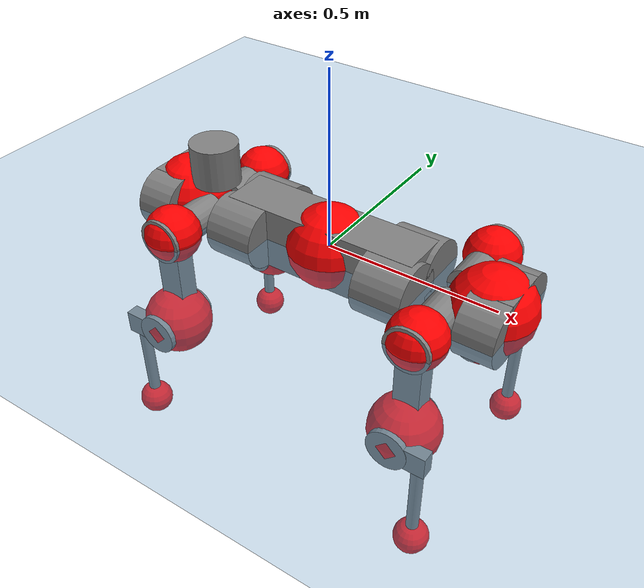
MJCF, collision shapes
<mujoco model="anymal_c">
  <compiler angle="radian" assetdir="assets" balanceinertia="true" inertiafromgeom="false"/>

  <option timestep="0.005" density="1.2" viscosity="2e-05"/>

  <size nkey="1"/>

  <visual>
    <quality shadowsize="8192"/>
    <map shadowclip="0.5"/>
  </visual>

  <default>
    <default class="/">
      <material specular="0" shininess="0.25"/>
      <geom contype="0" conaffinity="0" group="1" solref="-1000 -80"/>
      <site size="0.01 0.005 0.005" group="5"/>
      <general forcelimited="true" forcerange="-80 80" biastype="affine" gainprm="80" biasprm="0 -80 -2"/>
      <default class="anymal_c">
        <joint armature="0.01" damping="0.01" frictionloss="0.1"/>
        <default class="visual">
          <geom type="mesh" group="2"/>
          <default class="visual_zflip"/>
        </default>
        <default class="collision">
          <geom type="cylinder" group="3"/>
          <default class="foot">
            <geom size="0.03 0 0" type="sphere" condim="6" priority="1" friction="0.8 0.02 0.01" solimp="0.015 1 0.03"/>
          </default>
        </default>
      </default>
      <default class="reward_collision_sphere">
        <geom group="5" rgba="1 0 0 1"/>
      </default>
    </default>
  </default>

  <asset>
    <texture type="skybox" colorspace="auto" name="//unnamed_texture_0" builtin="gradient" rgb1="0.95 0.95 0.95" rgb2="0.95 0.95 0.95" width="100" height="600"/>
    <texture type="2d" colorspace="auto" name="texplane" builtin="checker" rgb1="0.345 0.575 0.748" rgb2="0.345 0.575 0.748" markrgb="1 1 1" width="512" height="512"/>
    <texture type="2d" colorspace="linear" name="base" file="base.png"/>
    <texture type="2d" colorspace="linear" name="top_shell" file="top_shell.png"/>
    <texture type="2d" colorspace="linear" name="bottom_shell" file="bottom_shell.png"/>
    <texture type="2d" colorspace="linear" name="remote" file="remote.png"/>
    <texture type="2d" colorspace="linear" name="hatch" file="hatch.png"/>
    <texture type="2d" colorspace="linear" name="handle" file="handle.png"/>
    <texture type="2d" colorspace="linear" name="face" file="face.png"/>
    <texture type="2d" colorspace="linear" name="battery" file="battery.png"/>
    <texture type="2d" colorspace="linear" name="lidar_cage" file="lidar_cage.png"/>
    <texture type="2d" colorspace="linear" name="depth_camera" file="depth_camera.png"/>
    <texture type="2d" colorspace="linear" name="wide_angle_camera" file="wide_angle_camera.png"/>
    <texture type="2d" colorspace="linear" name="lidar" file="lidar.png"/>
    <texture type="2d" colorspace="linear" name="drive" file="drive.png"/>
    <texture type="2d" colorspace="linear" name="hip_l" file="hip_l.png"/>
    <texture type="2d" colorspace="linear" name="shank_l" file="shank_l.png"/>
    <texture type="2d" colorspace="linear" name="foot" file="foot.png"/>
    <texture type="2d" colorspace="linear" name="thigh" file="thigh.png"/>
    <texture type="2d" colorspace="linear" name="shank_r" file="shank_r.png"/>
    <texture type="2d" colorspace="linear" name="hip_r" file="hip_r.png"/>
    <material name="MatPlane" class="/" texture="texplane" texuniform="true" texrepeat="2 2" specular="0.9" shininess="0.5"/>
    <material name="black_plastic" class="/" rgba="0.007 0.007 0.007 1"/>
    <material name="green" class="/" rgba="0.052 0.178 0.033 1"/>
    <material name="red" class="/" rgba="0.178 0.006 0.005 1"/>
    <material name="yellow" class="/" rgba="0.178 0.119 0.006 1"/>
    <material name="lwl" class="/" rgba="0.8 0.8 0.8 1"/>
    <material name="base" class="/" texture="base"/>
    <material name="top_shell" class="/" texture="top_shell"/>
    <material name="bottom_shell" class="/" texture="bottom_shell"/>
    <material name="hip_l" class="/" texture="hip_l"/>
    <material name="thigh" class="/" texture="thigh"/>
    <material name="shank_l" class="/" texture="shank_l"/>
    <material name="foot" class="/" texture="foot"/>
    <material name="hip_r" class="/" texture="hip_r"/>
    <material name="shank" class="/" texture="shank_r"/>
    <material name="hatch" class="/" texture="hatch"/>
    <material name="remote" class="/" texture="remote"/>
    <material name="handle" class="/" texture="handle"/>
    <material name="face" class="/" texture="face"/>
    <material name="depth_camera" class="/" texture="depth_camera"/>
    <material name="wide_angle_camera" class="/" texture="wide_angle_camera"/>
    <material name="battery" class="/" texture="battery"/>
    <material name="lidar_cage" class="/" texture="lidar_cage"/>
    <material name="lidar" class="/" texture="lidar"/>
    <material name="drive" class="/" texture="drive"/>
    <mesh name="base_0" class="/" file="base_0.obj"/>
    <mesh name="base_1" class="/" file="base_1.obj"/>
    <mesh name="base_2" class="/" file="base_2.obj"/>
    <mesh name="base_3" class="/" file="base_3.obj"/>
    <mesh name="base_4" class="/" file="base_4.obj"/>
    <mesh name="base_5" class="/" file="base_5.obj"/>
    <mesh name="top_shell" class="/" file="top_shell.obj"/>
    <mesh name="bottom_shell" class="/" file="bottom_shell.obj"/>
    <mesh name="remote" class="/" file="remote.obj"/>
    <mesh name="handle" class="/" file="handle.obj"/>
    <mesh name="face" class="/" file="face.obj"/>
    <mesh name="wide_angle_camera" class="/" file="wide_angle_camera.obj"/>
    <mesh name="depth_camera" class="/" file="depth_camera.obj"/>
    <mesh name="battery" class="/" file="battery.obj"/>
    <mesh name="lidar_cage" class="/" file="lidar_cage.obj"/>
    <mesh name="lidar" class="/" file="lidar.obj"/>
    <mesh name="drive" class="/" file="drive.obj"/>
    <mesh name="hip_l" class="/" file="hip_l.obj"/>
    <mesh name="thigh" class="/" file="thigh.obj"/>
    <mesh name="shank_l" class="/" file="shank_l.obj"/>
    <mesh name="foot" class="/" file="foot.obj"/>
    <mesh name="hip_r" class="/" file="hip_r.obj"/>
    <mesh name="hatch" class="/" file="hatch.obj"/>
    <mesh name="shank_r" class="/" file="shank_r.obj"/>
  </asset>

  <worldbody>
    <geom name="floor" class="/" size="100 100 0.125" type="plane" group="0" material="MatPlane"/>
    <light name="toplight_shadow" class="/" pos="0 0 5" dir="0.0990148 0.0990148 -0.990148" type="directional" ambient="0.04 0.04 0.04" diffuse="0.55 0.55 0.55" specular="0.12 0.12 0.12"/>
    <light name="toplight_fill" class="/" pos="0 0 5" dir="0.0990148 0.0990148 -0.990148" type="directional" castshadow="false" ambient="0.04 0.04 0.04" diffuse="0.3 0.3 0.3" specular="0.08 0.08 0.08"/>
    <body name="trunk" childclass="anymal_c" pos="0.0014398 0.000112949 0.000941203" quat="1 0.000136817 0.000431092 8.01576e-05">
      <inertial pos="0.00122632 -0.000780023 0.0490353" quat="0.498795 0.500285 0.501902 0.499012" mass="18.4674" diaginertia="0.89469 0.409116 0.211725"/>
      <joint name="//unnamed_joint_0" type="free" armature="0" damping="0" frictionloss="0"/>
      <geom name="//unnamed_geom_1" class="visual" material="green" mesh="base_0"/>
      <geom name="//unnamed_geom_2" class="visual" material="yellow" mesh="base_1"/>
      <geom name="//unnamed_geom_3" class="visual" material="red" mesh="base_2"/>
      <geom name="//unnamed_geom_4" class="visual" material="black_plastic" mesh="base_3"/>
      <geom name="//unnamed_geom_5" class="visual" material="lwl" mesh="base_4"/>
      <geom name="//unnamed_geom_6" class="visual" material="base" mesh="base_5"/>
      <geom name="trunk_1" class="collision" size="0.288324 0.0695955 0.0894799" type="box"/>
      <geom name="trunk_2" class="collision" size="0.0894799 0.0720811" pos="0.232409 0.0642951 0" quat="0.707107 0 0.707107 0"/>
      <geom name="trunk_3" class="collision" size="0.0894799 0.0720811" pos="-0.232409 0.0642951 0" quat="0.707107 0 0.707107 0"/>
      <geom name="trunk_4" class="collision" size="0.0894799 0.0720811" pos="0.232409 -0.0642951 0" quat="0.707107 0 0.707107 0"/>
      <geom name="trunk_5" class="collision" size="0.0894799 0.0720811" pos="-0.232409 -0.0642951 0" quat="0.707107 0 0.707107 0"/>
      <geom name="//unnamed_geom_12" class="visual" material="top_shell" mesh="top_shell"/>
      <geom name="//unnamed_geom_13" class="visual" material="bottom_shell" mesh="bottom_shell"/>
      <geom name="//unnamed_geom_14" class="visual" material="remote" mesh="remote"/>
      <geom name="//unnamed_geom_15" class="visual" material="handle" mesh="handle"/>
      <geom name="//unnamed_geom_16" class="visual" pos="0.442913 0 0" quat="1 0 0 0" material="face" mesh="face"/>
      <geom name="trunk_6" class="collision" size="0.0546822 0.0695955 0.0894799" pos="0.501684 0 0" type="box"/>
      <geom name="//unnamed_geom_18" class="collision" size="0.0894799 0.0546822" pos="0.501684 0.0642951 0" quat="0.707107 0 0.707107 0"/>
      <geom name="//unnamed_geom_19" class="collision" size="0.0894799 0.0546822" pos="0.501684 -0.0642951 0" quat="0.707107 0 0.707107 0"/>
      <geom name="//unnamed_geom_20" class="visual" pos="0.493293 0 -0.0285177" quat="0.965926 0 0.258819 0" material="depth_camera" mesh="depth_camera"/>
      <geom name="//unnamed_geom_21" class="visual" pos="0.548166 0 0.0149044" material="wide_angle_camera" mesh="wide_angle_camera"/>
      <geom name="//unnamed_geom_22" class="visual_zflip" pos="-0.442913 0 0" quat="0 0 0 1" material="face" mesh="face"/>
      <geom name="trunk_7" class="collision" size="0.0546822 0.0695955 0.0894799" pos="-0.501684 0 0" quat="0 0 0 1" type="box"/>
      <geom name="//unnamed_geom_24" class="collision" size="0.0894799 0.0546822" pos="-0.501684 -0.0642951 0" quat="0 -0.707107 0 0.707107"/>
      <geom name="//unnamed_geom_25" class="collision" size="0.0894799 0.0546822" pos="-0.501684 0.0642951 0" quat="0 -0.707107 0 0.707107"/>
      <geom name="//unnamed_geom_26" class="visual" pos="-0.493293 0 -0.0285177" quat="0 -0.258819 0 0.965926" material="depth_camera" mesh="depth_camera"/>
      <geom name="//unnamed_geom_27" class="visual_zflip" pos="-0.548166 0 0.0149044" quat="0 0 0 1" material="wide_angle_camera" mesh="wide_angle_camera"/>
      <geom name="//unnamed_geom_28" class="visual" material="battery" mesh="battery"/>
      <geom name="//unnamed_geom_29" class="visual" pos="0 0.0682566 0.0294769" quat="0.683013 -0.183013 0.183013 0.683013" material="depth_camera" mesh="depth_camera"/>
      <geom name="//unnamed_geom_30" class="visual" pos="0 -0.0682566 0.0294769" quat="0.683013 0.183013 0.183013 -0.683013" material="depth_camera" mesh="depth_camera"/>
      <geom name="//unnamed_geom_31" class="visual" pos="-0.388952 0 0.0731777" quat="1 0 0 0" material="lidar_cage" mesh="lidar_cage"/>
      <geom name="trunk_8" class="collision" size="0.0695955 0.0596533" pos="-0.388952 0 0.132915"/>
      <geom name="//unnamed_geom_33" class="visual" pos="-0.388952 -5.89497e-05 0.141576" quat="0.707107 0 0 -0.707107" material="lidar" mesh="lidar"/>
      <geom name="//unnamed_geom_34" class="visual" pos="0.320458 0.0955515 -1.33022e-09" quat="0.258819 0.965926 0 0" material="drive" mesh="drive"/>
      <geom name="//unnamed_geom_35" class="visual" pos="0.320458 -0.0955515 1.33022e-09" quat="0.258819 -0.965926 0 0" material="drive" mesh="drive"/>
      <geom name="//unnamed_geom_36" class="visual" pos="-0.320458 0.0955515 1.33022e-09" quat="0 0 0.965926 -0.258819" material="drive" mesh="drive"/>
      <geom name="//unnamed_geom_37" class="visual" pos="-0.320458 -0.0955515 -1.33022e-09" quat="0 0 -0.965926 -0.258819" material="drive" mesh="drive"/>
      <geom name="//unnamed_geom_38" class="visual" pos="0.123952 0 0.0726799" quat="1 0 0 0" material="hatch" mesh="hatch"/>
      <geom name="//unnamed_geom_39" class="reward_collision_sphere" size="0.119307"/>
      <geom name="//unnamed_geom_40" class="reward_collision_sphere" size="0.119307" pos="0.480847 0 0"/>
      <geom name="//unnamed_geom_41" class="reward_collision_sphere" size="0.119307" pos="-0.480847 0 0"/>
      <site name="imu" pos="0.265723 0.00313223 0.0497877" size="0.00994222"/>
      <camera name="track" pos="0 -1.837 0" quat="0.707107 0.707107 0 0" mode="trackcom"/>
      <camera name="ego_camera" pos="0.480847 0 -0.0398246" quat="-0.5 -0.5 0.5 0.5"/>
      <body name="LF_HIP" pos="0.320904 0.0953131 0.000167121" quat="0.258424 0.966032 -0.000124423 0.000155055">
        <inertial pos="0.0607885 -0.0134277 -0.00866793" quat="-0.128371 0.709303 -0.136142 0.679614" mass="2.77535" diaginertia="0.00834061 0.00318962 0.0032152"/>
        <joint name="LF_HAA" pos="0 0 0" axis="0.999954 0.00487985 -0.00822958" range="-0.693687 0.481207" armature="0.00990574" damping="0.00537069" frictionloss="0.0986326"/>
        <geom name="//unnamed_geom_42" class="visual" pos="0 -7.82508e-05 1.28526e-05" quat="0.258819 -0.965926 0 0" material="hip_l" mesh="hip_l"/>
        <geom name="//unnamed_geom_43" class="visual" pos="0.0640061 -0.0756088 -0.0442231" quat="0.183013 -0.683013 0.683013 0.183013" material="drive" mesh="drive"/>
        <geom name="//unnamed_geom_44" class="collision" size="0.0497111 0.0695955" pos="0.0640061 -0.0109851 -0.00687472" quat="-0.353553 -0.612372 0.612372 -0.353553"/>
        <body name="LF_THIGH" pos="0.0633328 -0.0669495 -0.0431854" quat="0.18293 -0.683071 0.683012 0.18288">
          <inertial pos="0.0328101 0.000790467 -0.245426" quat="0.993142 -0.00513438 -0.0808923 0.0842571" mass="3.03521" diaginertia="0.0417839 0.0195909 0.0041884"/>
          <joint name="LF_HFE" pos="0 0 0" axis="0.999998 -0.00200516 -0.00044348" range="-3.15915 3.14109" armature="0.0102261" damping="0.00957585" frictionloss="0.102289"/>
          <geom name="//unnamed_geom_45" class="visual" pos="0.00298536 4.70423e-06 0" quat="0.707107 0 0 -0.707107" material="thigh" mesh="thigh"/>
          <geom name="//unnamed_geom_46" class="collision" size="0.0646244 0.0397689" pos="0.042742 0 0" quat="0.5 0.5 -0.5 -0.5"/>
          <geom name="//unnamed_geom_47" class="collision" size="0.0372833 0.0298266 0.140497" pos="0.0320565 0 -0.140694" quat="0.707107 0 0 -0.707107" type="box"/>
          <geom name="//unnamed_geom_48" class="visual" pos="0.107175 0 -0.28375" quat="1 0 0 0" material="drive" mesh="drive"/>
          <geom name="//unnamed_geom_49" class="collision" size="0.0497111 0.0695955" pos="0.032377 0 -0.28375" quat="0.707107 0 0.707107 0"/>
          <geom name="//unnamed_geom_50" class="reward_collision_sphere" size="0.0795377" pos="0.0267137 0 0"/>
          <body name="LF_SHANK" pos="0.107469 -0.0011558 -0.283558" quat="1 0.000225462 0.000123263 -0.000176621">
            <inertial pos="0.00565083 -0.056435 -0.0808837" quat="0.993323 -0.112271 -0.000646638 -0.0265265" mass="0.578547" diaginertia="0.0145803 0.00610484 0.00111222"/>
            <joint name="LF_KFE" pos="0 0 0" axis="0.999989 0.00431395 0.00204837" range="-3.15721 3.13412" armature="0.00952634" damping="0.00585047" frictionloss="0.0947709"/>
            <geom name="//unnamed_geom_51" class="visual" pos="0.00097346 0.00519054 0" quat="0.707107 0 0 -0.707107" material="shank_l" mesh="shank_l"/>
            <geom name="LF_kfe_act" class="collision" size="0.0596533 0.0198844" pos="0.021371 0 0" quat="0.5 0.5 -0.5 -0.5"/>
            <geom name="//unnamed_geom_53" class="collision" size="0.0571668 0.033555 0.0188902" pos="0.021371 -0.0528129 0" quat="0.5 0.5 -0.5 -0.5" type="box"/>
            <geom name="//unnamed_geom_54" class="visual" pos="0.0139443 -0.0791095 -0.336488" quat="0.382683 0 0 -0.92388" material="foot" mesh="foot"/>
            <geom name="LF_calf" class="collision" size="0.0173989 0.140436" pos="0.0139446 -0.0807822 -0.168244" quat="0.707107 0 0 -0.707107"/>
            <geom name="LF_foot" class="foot" size="0.0319181" pos="0.0139446 -0.0807822 -0.314087" quat="0.707107 0 0 -0.707107"/>
            <geom name="//unnamed_geom_57" class="reward_collision_sphere" size="0.0994222" pos="-0.0534274 0 0"/>
            <geom name="//unnamed_geom_58" class="reward_collision_sphere" size="0.0497111" pos="0.0139446 -0.0807822 -0.314087"/>
            <site name="LF_foot" class="foot" pos="0.0139446 -0.0807822 -0.314087" quat="0.707107 0 0 -0.707107" size="0.00994222"/>
          </body>
        </body>
      </body>
      <body name="RF_HIP" pos="0.321425 -0.0960843 -0.000605007" quat="0.25885 -0.965917 7.95936e-06 3.88219e-06">
        <inertial pos="0.0597348 0.0139725 -0.00820525" quat="0.135033 0.679562 0.126778 0.709851" mass="2.73099" diaginertia="0.00827132 0.00325006 0.00328051"/>
        <joint name="RF_HAA" pos="0 0 0" axis="0.999981 0.0061429 -0.000102298" stiffness="0.000616936" range="-0.502732 0.723839" armature="0.00983204" damping="0.00977706" frictionloss="0.0976562"/>
        <geom name="//unnamed_geom_59" class="visual" pos="0 7.82502e-05 1.28526e-05" quat="0.258819 0.965926 0 0" material="hip_r" mesh="hip_r"/>
        <geom name="//unnamed_geom_60" class="visual" pos="0.0640061 0.0756088 -0.0442231" quat="0.183013 0.683013 0.683013 -0.183013" material="drive" mesh="drive"/>
        <geom name="//unnamed_geom_61" class="collision" size="0.0497111 0.0695955" pos="0.0640061 0.0109851 -0.00687472" quat="-0.353553 0.612372 0.612372 0.353553"/>
        <body name="RF_THIGH" pos="0.064191 0.0651634 -0.042713" quat="0.183089 0.68298 0.683041 -0.182955">
          <inertial pos="0.0321093 4.85172e-05 -0.24455" quat="0.99288 -0.00268646 -0.0814816 0.0868533" mass="3.02525" diaginertia="0.0425755 0.0198827 0.00415496"/>
          <joint name="RF_HFE" pos="0 0 0" axis="1 -1.16742e-06 -0.000101878" range="-3.15205 3.14185" armature="0.00993981" damping="0.00860212" frictionloss="0.0949318"/>
          <geom name="//unnamed_geom_62" class="visual" pos="0.00298536 4.70423e-06 0" quat="0.707107 0 0 -0.707107" material="thigh" mesh="thigh"/>
          <geom name="//unnamed_geom_63" class="collision" size="0.0646244 0.0397689" pos="0.042742 0 0" quat="0.5 0.5 0.5 0.5"/>
          <geom name="//unnamed_geom_64" class="collision" size="0.0372833 0.0298266 0.140497" pos="0.0320565 0 -0.140694" quat="0.707107 0 0 0.707107" type="box"/>
          <geom name="//unnamed_geom_65" class="visual" pos="0.107175 0 -0.28375" quat="1 0 0 0" material="drive" mesh="drive"/>
          <geom name="//unnamed_geom_66" class="collision" size="0.0497111 0.0695955" pos="0.032377 0 -0.28375" quat="0.707107 0 0.707107 0"/>
          <geom name="//unnamed_geom_67" class="reward_collision_sphere" size="0.0795377" pos="0.0267137 0 0"/>
          <body name="RF_SHANK" pos="0.106884 0.00013443 -0.282887" quat="1 -1.2731e-05 1.05697e-05 3.16953e-05">
            <inertial pos="0.00587977 0.0560955 -0.0800441" quat="0.99286 0.116988 0.00121001 0.0232547" mass="0.58013" diaginertia="0.0141292 0.00603089 0.0010987"/>
            <joint name="RF_KFE" pos="0 0 0" axis="0.999998 -0.000464791 0.00218401" range="-3.12971 3.12795" armature="0.0102095" damping="0.00743582" frictionloss="0.103419"/>
            <geom name="//unnamed_geom_68" class="visual" pos="0.000973455 -0.00519053 0" quat="0.707107 0 0 0.707107" material="shank" mesh="shank_r"/>
            <geom name="RF_kfe_act" class="collision" size="0.0596533 0.0198844" pos="0.021371 0 0" quat="0.5 0.5 0.5 0.5"/>
            <geom name="//unnamed_geom_70" class="collision" size="0.0571668 0.033555 0.0188902" pos="0.021371 0.0528129 0" quat="0.5 0.5 0.5 0.5" type="box"/>
            <geom name="//unnamed_geom_71" class="visual" pos="0.0139448 0.0791095 -0.336488" quat="0.382683 0 0 0.92388" material="foot" mesh="foot"/>
            <geom name="RF_calf" class="collision" size="0.0173989 0.140436" pos="0.0139446 0.0807822 -0.168244" quat="0.707107 0 0 0.707107"/>
            <geom name="RF_foot" class="foot" size="0.0295984" pos="0.0139446 0.0807822 -0.314087" quat="0.707107 0 0 0.707107"/>
            <geom name="//unnamed_geom_74" class="reward_collision_sphere" size="0.0994222" pos="-0.0534274 0 0"/>
            <geom name="//unnamed_geom_75" class="reward_collision_sphere" size="0.0497111" pos="0.0139446 0.0807822 -0.314087"/>
            <site name="RF_foot" class="foot" pos="0.0139446 0.0807822 -0.314087" quat="0.707107 0 0 0.707107" size="0.00994222"/>
          </body>
        </body>
      </body>
      <body name="LH_HIP" pos="-0.320255 0.0957015 0.000872159" quat="3.11898e-05 0.000177749 0.965905 -0.258896">
        <inertial pos="0.0599492 0.0148918 -0.00807332" quat="0.135423 0.678594 0.135666 0.709059" mass="2.77895" diaginertia="0.00820653 0.00323811 0.00326415"/>
        <joint name="LH_HAA" pos="0 0 0" axis="1 8.31609e-05 0.000787414" range="-0.503943 0.738708" armature="0.00985582" damping="0.0111436" frictionloss="0.10272"/>
        <geom name="//unnamed_geom_76" class="visual" pos="0 7.82502e-05 1.28526e-05" quat="-0.258819 -0.965926 0 0" material="hip_r" mesh="hip_r"/>
        <geom name="//unnamed_geom_77" class="visual" pos="0.0640061 0.0756088 -0.0442231" quat="0.183013 0.683013 0.683013 -0.183013" material="drive" mesh="drive"/>
        <geom name="//unnamed_geom_78" class="collision" size="0.0497111 0.0695955" pos="0.0640061 0.0109851 -0.00687472" quat="-0.353553 0.612372 0.612372 0.353553"/>
        <body name="LH_THIGH" pos="0.0637013 0.0661842 -0.0418065" quat="0.183013 0.683223 0.682884 -0.182707">
          <inertial pos="0.0330188 -4.14626e-05 -0.243958" quat="0.992904 -0.00705997 -0.0813792 0.0864237" mass="3.05736" diaginertia="0.0419328 0.0196473 0.00405778"/>
          <joint name="LH_HFE" pos="0 0 0" axis="0.999989 -0.0021336 0.00416513" range="-3.14746 3.13851" armature="0.00982487" damping="0.0132373" frictionloss="0.0993"/>
          <geom name="//unnamed_geom_79" class="visual" pos="0.00298536 4.70423e-06 0" quat="0.707107 0 0 -0.707107" material="thigh" mesh="thigh"/>
          <geom name="//unnamed_geom_80" class="collision" size="0.0646244 0.0397689" pos="0.042742 0 0" quat="0.5 0.5 -0.5 -0.5"/>
          <geom name="//unnamed_geom_81" class="collision" size="0.0372833 0.0298266 0.140497" pos="0.0320565 0 -0.140694" quat="0.707107 0 0 -0.707107" type="box"/>
          <geom name="//unnamed_geom_82" class="visual" pos="0.107175 0 -0.28375" quat="1 0 0 0" material="drive" mesh="drive"/>
          <geom name="//unnamed_geom_83" class="collision" size="0.0497111 0.0695955" pos="0.032377 0 -0.28375" quat="0.707107 0 0.707107 0"/>
          <geom name="//unnamed_geom_84" class="reward_collision_sphere" size="0.0795377" pos="0.0267137 0 0"/>
          <body name="LH_SHANK" pos="0.107122 -7.69862e-05 -0.28469" quat="1 4.24564e-05 8.14185e-05 7.64891e-05">
            <inertial pos="0.00643418 0.05745 -0.0803816" quat="0.992856 0.117441 -0.000666809 0.0210733" mass="0.574521" diaginertia="0.0142303 0.0059834 0.00106984"/>
            <joint name="LH_KFE" pos="0 0 0" axis="0.999997 -0.00124636 0.00230831" range="-3.14181 3.12291" armature="0.00952996" damping="0.0116203" frictionloss="0.105355"/>
            <geom name="//unnamed_geom_85" class="visual" pos="0.000973455 -0.00519053 0" quat="-0.707107 0 0 -0.707107" material="shank" mesh="shank_r"/>
            <geom name="LH_kfe_act" class="collision" size="0.0596533 0.0198844" pos="0.021371 0 0" quat="0.5 0.5 -0.5 -0.5"/>
            <geom name="//unnamed_geom_87" class="collision" size="0.0571668 0.033555 0.0188902" pos="0.021371 0.0528129 0" quat="0.5 0.5 -0.5 -0.5" type="box"/>
            <geom name="//unnamed_geom_88" class="visual" pos="0.0139448 0.0791095 -0.336488" quat="-0.382683 0 0 -0.92388" material="foot" mesh="foot"/>
            <geom name="LH_calf" class="collision" size="0.0173989 0.140436" pos="0.0139446 0.0807822 -0.168244" quat="0.707107 0 0 -0.707107"/>
            <geom name="LH_foot" class="foot" size="0.0310123" pos="0.0139446 0.0807822 -0.314087" quat="0.707107 0 0 -0.707107"/>
            <geom name="//unnamed_geom_91" class="reward_collision_sphere" size="0.0994222" pos="-0.0534274 0 0"/>
            <geom name="//unnamed_geom_92" class="reward_collision_sphere" size="0.0497111" pos="0.0139446 0.0807822 -0.314087"/>
            <site name="LH_foot" class="foot" pos="0.0139446 0.0807822 -0.314087" quat="0.707107 0 0 -0.707107" size="0.00994222"/>
          </body>
        </body>
      </body>
      <body name="RH_HIP" pos="-0.320749 -0.094896 0.000135424" quat="0.000139452 3.04696e-05 -0.966094 -0.258189">
        <inertial pos="0.0617759 -0.0144153 -0.00969417" quat="-0.126989 0.709834 -0.133335 0.679876" mass="2.72582" diaginertia="0.00814518 0.00322091 0.00320936"/>
        <joint name="RH_HAA" pos="0 0 0" axis="0.999967 0.00308199 0.00756927" range="-0.734096 0.50228" armature="0.0104114" damping="0.00845005" frictionloss="0.101733"/>
        <geom name="//unnamed_geom_93" class="visual" pos="0 -7.82508e-05 1.28526e-05" quat="-0.258819 0.965926 0 0" material="hip_l" mesh="hip_l"/>
        <geom name="//unnamed_geom_94" class="visual" pos="0.0640061 -0.0756088 -0.0442231" quat="-0.183013 0.683013 -0.683013 -0.183013" material="drive" mesh="drive"/>
        <geom name="//unnamed_geom_95" class="collision" size="0.0497111 0.0695955" pos="0.0640061 -0.0109851 -0.00687472" quat="0.353553 0.612372 -0.612372 0.353553"/>
        <body name="RH_THIGH" pos="0.0637256 -0.0659257 -0.0430737" quat="-0.182973 0.683057 -0.68299 -0.182975">
          <inertial pos="0.0327563 6.88952e-05 -0.244441" quat="0.99321 -0.0053293 -0.0809484 0.0833868" mass="3.0028" diaginertia="0.0418769 0.0193922 0.00409039"/>
          <joint name="RH_HFE" pos="0 0 0" axis="1 -2.0222e-06 -5.29295e-05" range="-3.13801 3.15402" armature="0.00981943" damping="0.0082485" frictionloss="0.101666"/>
          <geom name="//unnamed_geom_96" class="visual" pos="0.00298536 4.70423e-06 0" quat="0.707107 0 0 -0.707107" material="thigh" mesh="thigh"/>
          <geom name="//unnamed_geom_97" class="collision" size="0.0646244 0.0397689" pos="0.042742 0 0" quat="0.5 0.5 0.5 0.5"/>
          <geom name="//unnamed_geom_98" class="collision" size="0.0372833 0.0298266 0.140497" pos="0.0320565 0 -0.140694" quat="0.707107 0 0 0.707107" type="box"/>
          <geom name="//unnamed_geom_99" class="visual" pos="0.107175 0 -0.28375" quat="1 0 0 0" material="drive" mesh="drive"/>
          <geom name="//unnamed_geom_100" class="collision" size="0.0497111 0.0695955" pos="0.032377 0 -0.28375" quat="0.707107 0 0.707107 0"/>
          <geom name="//unnamed_geom_101" class="reward_collision_sphere" size="0.0795377" pos="0.0267137 0 0"/>
          <body name="RH_SHANK" pos="0.10639 0.000274287 -0.285164" quat="1 -0.000160897 -4.11007e-05 -9.82918e-05">
            <inertial pos="0.00623673 -0.0556586 -0.0801254" quat="0.992762 -0.116441 -0.00354702 -0.029215" mass="0.580053" diaginertia="0.0140597 0.00603653 0.00109937"/>
            <joint name="RH_KFE" pos="0 0 0" axis="0.999966 0.00746114 -0.00351477" range="-3.13011 3.13199" armature="0.00997287" damping="0.0111595" frictionloss="0.0996959"/>
            <geom name="//unnamed_geom_102" class="visual" pos="0.00097346 0.00519054 0" quat="0.707107 0 0 -0.707107" material="shank_l" mesh="shank_l"/>
            <geom name="RH_kfe_act" class="collision" size="0.0596533 0.0198844" pos="0.021371 0 0" quat="0.5 0.5 0.5 0.5"/>
            <geom name="//unnamed_geom_104" class="collision" size="0.0571668 0.033555 0.0188902" pos="0.021371 -0.0528129 0" quat="0.5 0.5 0.5 0.5" type="box"/>
            <geom name="//unnamed_geom_105" class="visual" pos="0.0139443 -0.0791095 -0.336488" quat="0.382683 0 0 -0.92388" material="foot" mesh="foot"/>
            <geom name="RH_calf" class="collision" size="0.0173989 0.140436" pos="0.0139446 -0.0807822 -0.168244" quat="0.707107 0 0 0.707107"/>
            <geom name="RH_foot" class="foot" size="0.027261" pos="0.0139446 -0.0807822 -0.314087" quat="0.707107 0 0 0.707107"/>
            <geom name="//unnamed_geom_108" class="reward_collision_sphere" size="0.0994222" pos="-0.0534274 0 0"/>
            <geom name="//unnamed_geom_109" class="reward_collision_sphere" size="0.0497111" pos="0.0139446 -0.0807822 -0.314087"/>
            <site name="RH_foot" class="foot" pos="0.0139446 -0.0807822 -0.314087" quat="0.707107 0 0 0.707107" size="0.00994222"/>
          </body>
        </body>
      </body>
    </body>
  </worldbody>

  <contact>
    <pair class="/" geom1="floor" geom2="LF_foot" name="//unnamed_contact_0"/>
    <pair class="/" geom1="floor" geom2="RF_foot" name="//unnamed_contact_1"/>
    <pair class="/" geom1="floor" geom2="LH_foot" name="//unnamed_contact_2"/>
    <pair class="/" geom1="floor" geom2="RH_foot" name="//unnamed_contact_3"/>
  </contact>

  <actuator>
    <general name="LF_HAA" class="/" joint="LF_HAA" forcerange="-80.3848 80.3848" gainprm="78.8901" biasprm="0 -78.8901 -1.91167"/>
    <general name="LF_HFE" class="/" joint="LF_HFE" forcerange="-82.4307 82.4307" gainprm="78.8901" biasprm="0 -78.8901 -1.91167"/>
    <general name="LF_KFE" class="/" joint="LF_KFE" forcerange="-79.6059 79.6059" gainprm="78.8901" biasprm="0 -78.8901 -1.91167"/>
    <general name="RF_HAA" class="/" joint="RF_HAA" forcerange="-80.2415 80.2415" gainprm="78.8901" biasprm="0 -78.8901 -1.91167"/>
    <general name="RF_HFE" class="/" joint="RF_HFE" forcerange="-78.0531 78.0531" gainprm="78.8901" biasprm="0 -78.8901 -1.91167"/>
    <general name="RF_KFE" class="/" joint="RF_KFE" forcerange="-79.8466 79.8466" gainprm="78.8901" biasprm="0 -78.8901 -1.91167"/>
    <general name="LH_HAA" class="/" joint="LH_HAA" forcerange="-83.6926 83.6926" gainprm="78.8901" biasprm="0 -78.8901 -1.91167"/>
    <general name="LH_HFE" class="/" joint="LH_HFE" forcerange="-82.5993 82.5993" gainprm="78.8901" biasprm="0 -78.8901 -1.91167"/>
    <general name="LH_KFE" class="/" joint="LH_KFE" forcerange="-77.7781 77.7781" gainprm="78.8901" biasprm="0 -78.8901 -1.91167"/>
    <general name="RH_HAA" class="/" joint="RH_HAA" forcerange="-81.9159 81.9159" gainprm="78.8901" biasprm="0 -78.8901 -1.91167"/>
    <general name="RH_HFE" class="/" joint="RH_HFE" forcerange="-82.9785 82.9785" gainprm="78.8901" biasprm="0 -78.8901 -1.91167"/>
    <general name="RH_KFE" class="/" joint="RH_KFE" forcerange="-81.0681 81.0681" gainprm="78.8901" biasprm="0 -78.8901 -1.91167"/>
  </actuator>

  <sensor>
    <gyro site="imu" name="imu_angular_velocity"/>
    <velocimeter site="imu" name="imu_linear_velocity"/>
    <framelinvel objtype="site" objname="LF_foot" name="LF_foot_global_linear_velocity"/>
    <framelinvel objtype="site" objname="RF_foot" name="RF_foot_global_linear_velocity"/>
    <framelinvel objtype="site" objname="LH_foot" name="LH_foot_global_linear_velocity"/>
    <framelinvel objtype="site" objname="RH_foot" name="RH_foot_global_linear_velocity"/>
  </sensor>

  <keyframe>
    <key name="home" qpos="0 0 0.55 1 0 0 0 0 0.4 -0.8 0 -0.4 0.8 0 -0.4 0.8 0 0.4 -0.8"/>
  </keyframe>
</mujoco>
